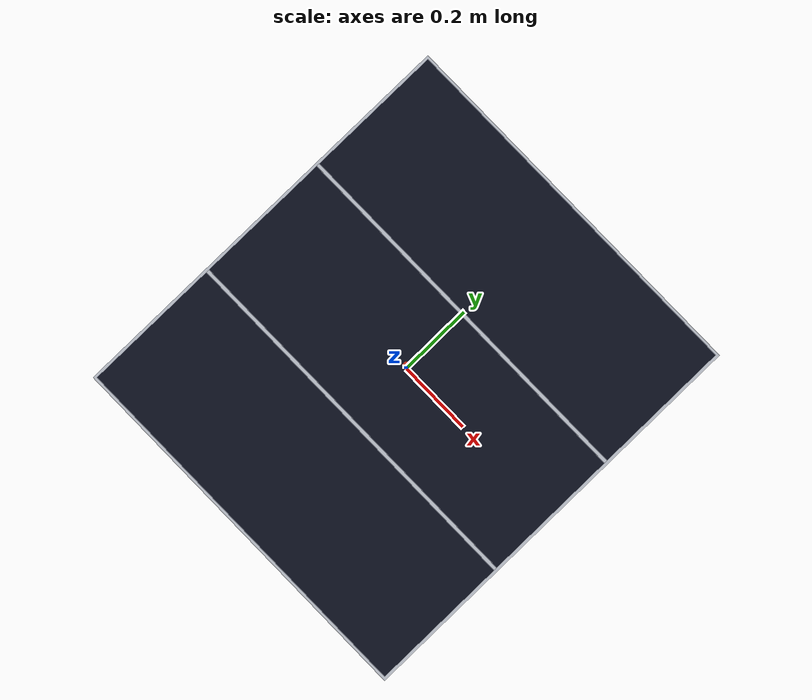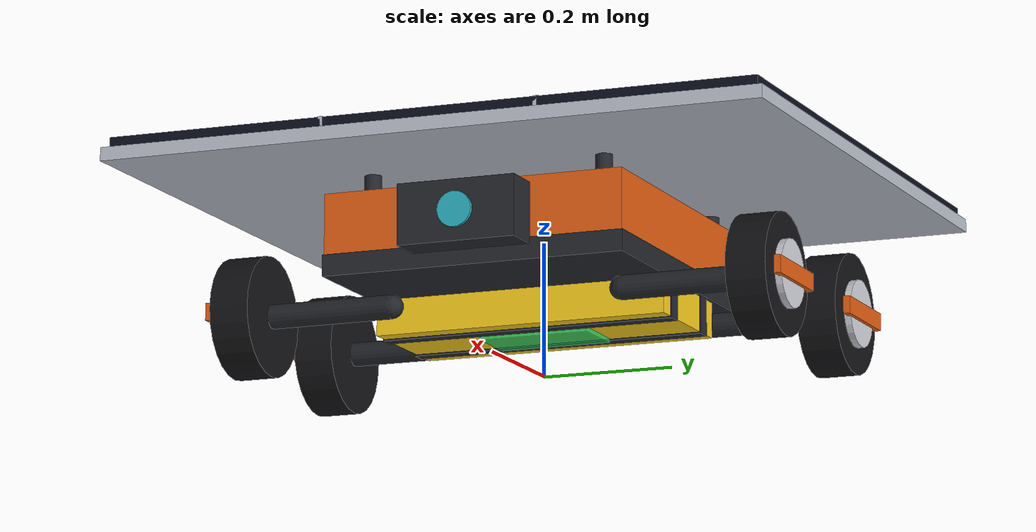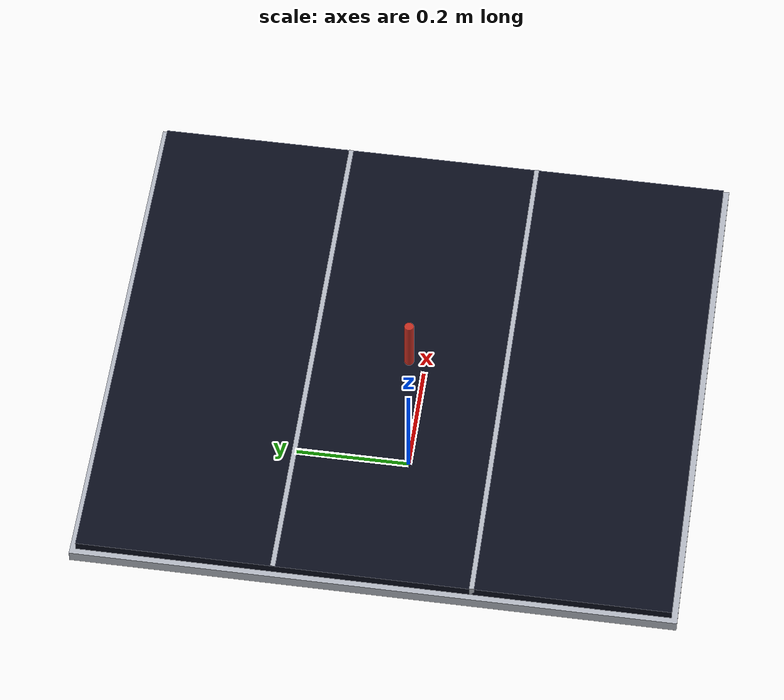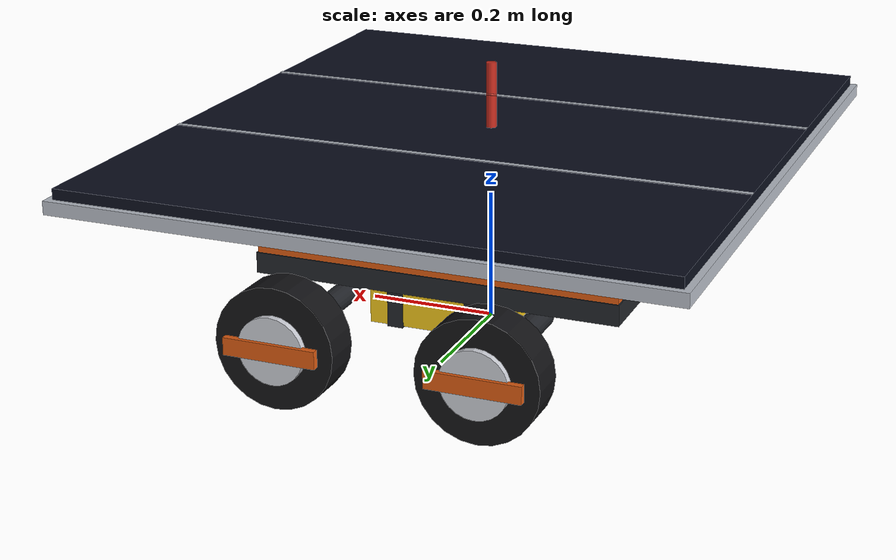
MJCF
<mujoco model="solar_rover">
  <!-- GENERATED by robot/make_import_variants.py from robot/rover.xml -- do not edit; change rover.xml and re-run. Physics comments live in rover.xml. -->
  <compiler angle="radian" coordinate="local" inertiafromgeom="auto" meshdir="." autolimits="true" />
  <option timestep="0.001" integrator="implicitfast" cone="elliptic" impratio="1" gravity="0 0 -9.81" density="1.2" viscosity="0" />
  <size njmax="500" nconmax="200" />
  <statistic center="0 0 0.20" extent="1.3" meansize="0.05" />
  <asset>
    <material name="pv_glass" rgba="0.042 0.055 0.115 1" specular="0.95" shininess="0.92" reflectance="0.30" />
    <material name="pv_frame" rgba="0.72 0.74 0.78 1" specular="0.60" shininess="0.55" reflectance="0.15" />
    <material name="body" rgba="0.87 0.36 0.07 1" specular="0.35" shininess="0.35" reflectance="0.05" />
    <material name="body_dark" rgba="0.135 0.145 0.165 1" specular="0.35" shininess="0.35" />
    <material name="tyre" rgba="0.075 0.075 0.085 1" specular="0.12" shininess="0.10" />
    <material name="hub" rgba="0.80 0.81 0.84 1" specular="0.75" shininess="0.65" reflectance="0.10" />
    <material name="battery" rgba="0.95 0.78 0.10 1" specular="0.30" shininess="0.30" />
    <material name="lens" rgba="0.16 0.68 0.74 1" specular="0.95" shininess="0.95" />
    <material name="site_hi" rgba="0.95 0.25 0.18 0.85" />
    <material name="site_lo" rgba="0.20 0.85 0.45 0.85" />
  </asset>
  <default>
    <geom solref="0.02 1" solimp="0.90 0.95 0.001" condim="3" />
    <default class="wheel">
      <geom type="cylinder" material="tyre" friction="0.65 0.005 0.0001" condim="3" priority="1" contype="1" conaffinity="1" group="0" />
      <joint type="hinge" axis="0 1 0" armature="0.01" damping="0.02" frictionloss="0.60" />
    </default>
    <default class="visual">
      <geom contype="0" conaffinity="0" group="2" mass="0" />
    </default>
  </default>
  <worldbody>
    <body name="chassis" pos="0 0 0.175">
      <freejoint name="root" />
      <geom name="shell" type="box" size="0.28 0.23 0.06" material="body" mass="12.0" friction="0.5 0.005 0.0001" />
      <geom class="visual" name="sill" type="box" size="0.282 0.232 0.016" pos="0 0 -0.046" material="body_dark" />
      <geom class="visual" name="pod" type="box" size="0.038 0.090 0.045" pos="0.302 0 0.005" material="body_dark" />
      <geom class="visual" name="lens" type="cylinder" fromto="0.335 0 0.005 0.346 0 0.005" size="0.026" material="lens" />
      <geom class="visual" name="handle" type="capsule" fromto="-0.302 -0.14 0.035 -0.302 0.14 0.035" size="0.013" material="body_dark" />
      <geom class="visual" name="handle_l" type="capsule" fromto="-0.302 0.14 0.035 -0.275 0.14 0.045" size="0.012" material="body_dark" />
      <geom class="visual" name="handle_r" type="capsule" fromto="-0.302 -0.14 0.035 -0.275 -0.14 0.045" size="0.012" material="body_dark" />
      <geom class="visual" name="axle_fl" type="capsule" fromto="0.15 0.18 -0.085 0.15 0.37 -0.085" size="0.018" material="body_dark" />
      <geom class="visual" name="axle_fr" type="capsule" fromto="0.15 -0.18 -0.085 0.15 -0.37 -0.085" size="0.018" material="body_dark" />
      <geom class="visual" name="axle_rl" type="capsule" fromto="-0.15 0.18 -0.085 -0.15 0.37 -0.085" size="0.018" material="body_dark" />
      <geom class="visual" name="axle_rr" type="capsule" fromto="-0.15 -0.18 -0.085 -0.15 -0.37 -0.085" size="0.018" material="body_dark" />
      <geom class="visual" name="post_fl" type="cylinder" fromto="0.22 0.18 0.058 0.22 0.18 0.096" size="0.013" material="body_dark" />
      <geom class="visual" name="post_fr" type="cylinder" fromto="0.22 -0.18 0.058 0.22 -0.18 0.096" size="0.013" material="body_dark" />
      <geom class="visual" name="post_rl" type="cylinder" fromto="-0.22 0.18 0.058 -0.22 0.18 0.096" size="0.013" material="body_dark" />
      <geom class="visual" name="post_rr" type="cylinder" fromto="-0.22 -0.18 0.058 -0.22 -0.18 0.096" size="0.013" material="body_dark" />
      <geom name="pv_frame" type="box" size="0.455 0.505 0.010" pos="0 0 0.105" material="pv_frame" mass="2.5" friction="0.5 0.005 0.0001" />
      <geom name="pv_glass" type="box" size="0.445 0.495 0.008" pos="0 0 0.123" material="pv_glass" mass="6.5" friction="0.5 0.005 0.0001" />
      <geom class="visual" name="busbar_a" type="box" size="0.445 0.004 0.0085" pos="0 0.165 0.1235" material="pv_frame" />
      <geom class="visual" name="busbar_b" type="box" size="0.445 0.004 0.0085" pos="0 -0.165 0.1235" material="pv_frame" />
      <site name="panel_normal" type="cylinder" pos="0 0 0.181" zaxis="0 0 1" size="0.008 0.05" material="site_hi" group="1" />
      <site name="battery_mount" pos="0 0 -0.115" zaxis="0 0 -1" type="box" size="0.045 0.085 0.006" material="site_lo" group="1" />
      <site name="imu" pos="0 0 0" size="0.012" group="4" />
      <body name="wheel_fl_body" pos="0.15 0.4 -0.085">
        <joint class="wheel" name="wheel_fl" />
        <geom class="wheel" name="tyre_fl" fromto="0 -0.03 0 0 0.03 0" size="0.09" mass="1.1" />
        <geom class="visual" name="hub_fl" type="cylinder" fromto="0 0.030 0 0 0.040 0" size="0.050" material="hub" />
        <geom class="visual" name="spoke_fl" type="box" size="0.070 0.005 0.013" pos="0 0.041 0" material="body" />
      </body>
      <body name="wheel_fr_body" pos="0.15 -0.4 -0.085">
        <joint class="wheel" name="wheel_fr" />
        <geom class="wheel" name="tyre_fr" fromto="0 -0.03 0 0 0.03 0" size="0.09" mass="1.1" />
        <geom class="visual" name="hub_fr" type="cylinder" fromto="0 -0.030 0 0 -0.040 0" size="0.050" material="hub" />
        <geom class="visual" name="spoke_fr" type="box" size="0.070 0.005 0.013" pos="0 -0.041 0" material="body" />
      </body>
      <body name="wheel_rl_body" pos="-0.15 0.4 -0.085">
        <joint class="wheel" name="wheel_rl" />
        <geom class="wheel" name="tyre_rl" fromto="0 -0.03 0 0 0.03 0" size="0.09" mass="1.1" />
        <geom class="visual" name="hub_rl" type="cylinder" fromto="0 0.030 0 0 0.040 0" size="0.050" material="hub" />
        <geom class="visual" name="spoke_rl" type="box" size="0.070 0.005 0.013" pos="0 0.041 0" material="body" />
      </body>
      <body name="wheel_rr_body" pos="-0.15 -0.4 -0.085">
        <joint class="wheel" name="wheel_rr" />
        <geom class="wheel" name="tyre_rr" fromto="0 -0.03 0 0 0.03 0" size="0.09" mass="1.1" />
        <geom class="visual" name="hub_rr" type="cylinder" fromto="0 -0.030 0 0 -0.040 0" size="0.050" material="hub" />
        <geom class="visual" name="spoke_rr" type="box" size="0.070 0.005 0.013" pos="0 -0.041 0" material="body" />
      </body>
      <geom name="battery" type="box" size="0.10 0.225 0.0275" pos="0 0 -0.0875" material="battery" mass="4.0" friction="0.4 0.005 0.0001" />
      <geom class="visual" name="batt_strap_l" type="box" size="0.012 0.227 0.030" pos="0.06 0 -0.0875" material="body_dark" />
      <geom class="visual" name="batt_strap_r" type="box" size="0.012 0.227 0.030" pos="-0.06 0 -0.0875" material="body_dark" />
    </body>
  </worldbody>
  <actuator>
    <velocity name="mot_fl" joint="wheel_fl" kv="18" ctrlrange="-3.1416 3.1416" forcerange="-2.4 2.4" />
    <velocity name="mot_fr" joint="wheel_fr" kv="18" ctrlrange="-3.1416 3.1416" forcerange="-2.4 2.4" />
    <velocity name="mot_rl" joint="wheel_rl" kv="18" ctrlrange="-3.1416 3.1416" forcerange="-2.4 2.4" />
    <velocity name="mot_rr" joint="wheel_rr" kv="18" ctrlrange="-3.1416 3.1416" forcerange="-2.4 2.4" />
  </actuator>
  <sensor>
    <framezaxis name="panel_normal_world" objtype="site" objname="panel_normal" />
    <framepos name="panel_pos_world" objtype="site" objname="panel_normal" />
    <velocimeter name="chassis_vel" site="imu" />
    <gyro name="chassis_gyro" site="imu" />
  </sensor>
  <keyframe>
    <key name="home" qpos="0 0 0.175 1 0 0 0 0 0 0 0" ctrl="0 0 0 0" />
  </keyframe>
</mujoco>
